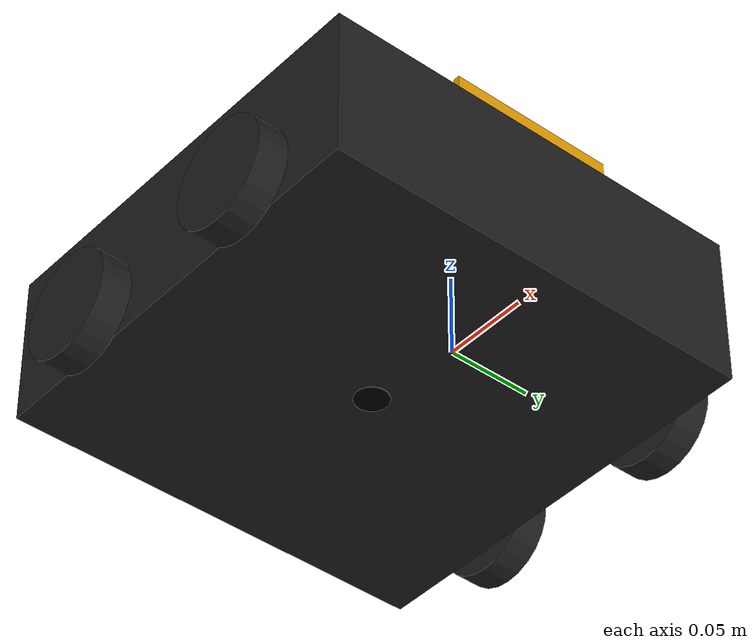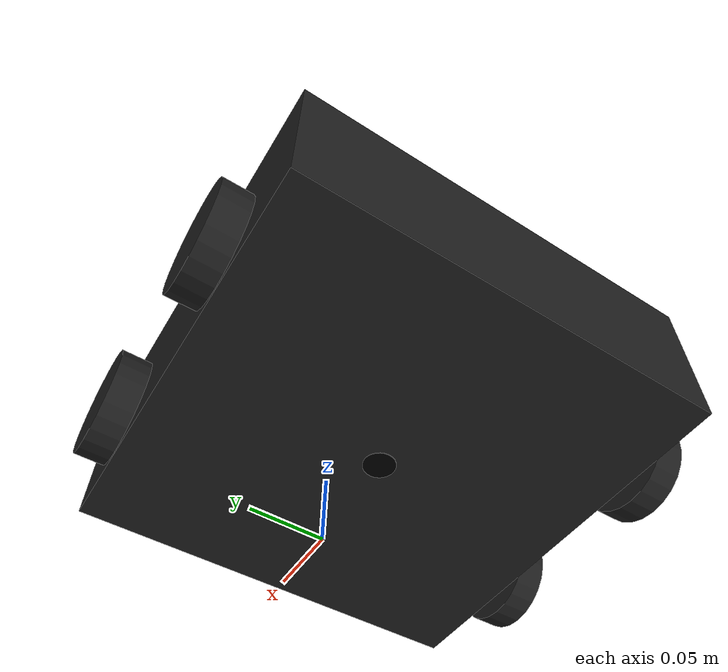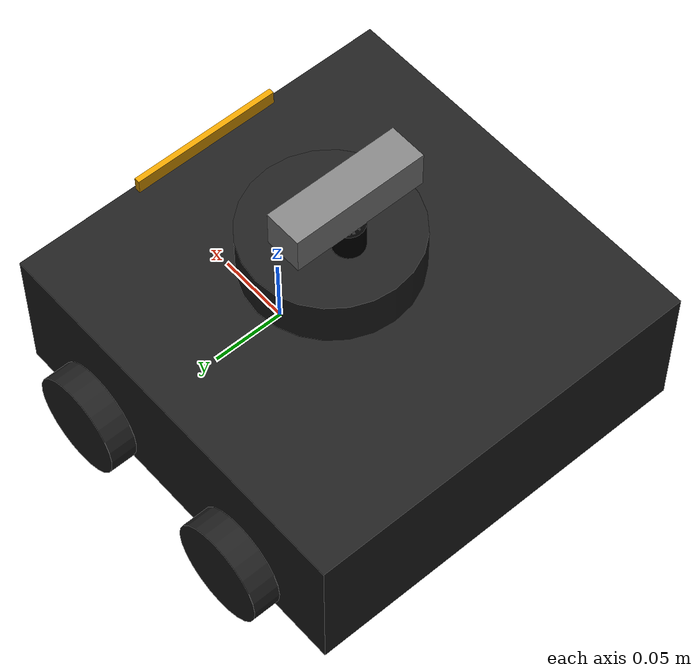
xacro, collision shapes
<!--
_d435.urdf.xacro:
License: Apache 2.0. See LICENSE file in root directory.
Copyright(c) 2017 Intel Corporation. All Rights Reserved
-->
<?xml version="1.0" ?>
<robot name="turtlebot3_waffle" xmlns:xacro="http://ros.org/wiki/xacro">
  <xacro:include filename="$(find turtlebot3_description)/urdf/common_properties.xacro"/>
  <xacro:include filename="$(find aslam_bringup)/launch/turtlebot3_simulation/urdf/turtlebot3_waffle_d435.gazebo.xacro"/>

  <xacro:property name="r200_cam_rgb_px" value="0.005"/>
  <xacro:property name="r200_cam_rgb_py" value="0.018"/>
  <xacro:property name="r200_cam_rgb_pz" value="0.013"/>
  <xacro:property name="r200_cam_depth_offset" value="0.01"/>

  <xacro:property name="telescopic_extension_length" value="0.15"/>

  <link name="base_footprint"/>

  <joint name="base_joint" type="fixed">
    <parent link="base_footprint"/>
    <child link="base_link" />
    <origin xyz="0 0 0.010" rpy="0 0 0"/>
  </joint>

  <link name="base_link">
    <visual>
      <origin xyz="-0.064 0 0.0" rpy="0 0 0"/>
      <geometry>
        <mesh filename="package://turtlebot3_description/meshes/bases/waffle_base.stl" scale="0.001 0.001 0.001"/>
      </geometry>
      <material name="light_black"/>
    </visual>

    <collision>
      <origin xyz="-0.064 0 0.047" rpy="0 0 0"/>
      <geometry>
        <box size="0.266 0.266 0.094"/>
      </geometry>
    </collision>

    <inertial>
      <origin xyz="-0.064 0 0.047" rpy="0 0 0"/>
      <mass value="1.3729096e+00"/>
      <inertia ixx="8.7002718e-03" ixy="-4.7576583e-05" ixz="1.1160499e-04"
               iyy="8.6195418e-03" iyz="-3.5422299e-06"
               izz="1.4612727e-02" />
    </inertial>
  </link>

  <joint name="wheel_left_joint" type="continuous">
    <parent link="base_link"/>
    <child link="wheel_left_link"/>
    <origin xyz="0.0 0.144 0.023" rpy="-1.57 0 0"/>
    <axis xyz="0 0 1"/>
  </joint>

  <link name="wheel_left_link">
    <visual>
      <origin xyz="0 0 0" rpy="1.57 0 0"/>
      <geometry>
        <mesh filename="package://turtlebot3_description/meshes/wheels/left_tire.stl" scale="0.001 0.001 0.001"/>
      </geometry>
      <material name="dark"/>
    </visual>

    <collision>
      <origin xyz="0 0 0" rpy="0 0 0"/>
      <geometry>
        <cylinder length="0.018" radius="0.033"/>
      </geometry>
    </collision>

    <inertial>
      <origin xyz="0 0 0" />
      <mass value="2.8498940e-02" />
      <inertia ixx="1.1175580e-05" ixy="-4.2369783e-11" ixz="-5.9381719e-09"
               iyy="1.1192413e-05" iyz="-1.4400107e-11"
               izz="2.0712558e-05" />
    </inertial>
  </link>

  <joint name="wheel_right_joint" type="continuous">
    <parent link="base_link"/>
    <child link="wheel_right_link"/>
    <origin xyz="0.0 -0.144 0.023" rpy="-1.57 0 0"/>
    <axis xyz="0 0 1"/>
  </joint>

  <link name="wheel_right_link">
    <visual>
      <origin xyz="0 0 0" rpy="1.57 0 0"/>
      <geometry>
        <mesh filename="package://turtlebot3_description/meshes/wheels/right_tire.stl" scale="0.001 0.001 0.001"/>
      </geometry>
      <material name="dark"/>
    </visual>

    <collision>
      <origin xyz="0 0 0" rpy="0 0 0"/>
      <geometry>
        <cylinder length="0.018" radius="0.033"/>
      </geometry>
    </collision>

    <inertial>
      <origin xyz="0 0 0" />
      <mass value="2.8498940e-02" />
      <inertia ixx="1.1175580e-05" ixy="-4.2369783e-11" ixz="-5.9381719e-09"
               iyy="1.1192413e-05" iyz="-1.4400107e-11"
               izz="2.0712558e-05" />
    </inertial>
  </link>

  <joint name="caster_back_right_joint" type="fixed">
    <parent link="base_link"/>
    <child link="caster_back_right_link"/>
    <origin xyz="-0.128 -0.144 0.023" rpy="-1.57 0 0"/>
  </joint>

  <link name="caster_back_right_link">
    <visual>
      <origin xyz="0 0 0" rpy="1.57 0 0"/>
      <geometry>
        <mesh filename="package://turtlebot3_description/meshes/wheels/right_tire.stl" scale="0.001 0.001 0.001"/>
      </geometry>
      <material name="dark"/>
    </visual>

    <collision>
      <origin xyz="0 0 0" rpy="0 0 0"/>
      <geometry>
        <cylinder length="0.018" radius="0.033"/>
      </geometry>
    </collision>

    <inertial>
      <origin xyz="0 0 0" rpy="0 0 0"/>
      <mass value="0.029" />
      <inertia ixx="0.000008678" ixy="0.0" ixz="0.0"
               iyy="0.000008678" iyz="0.0"
               izz="0.00001579" />
    </inertial>
  </link>

  <joint name="caster_back_left_joint" type="fixed">
    <parent link="base_link"/>
    <child link="caster_back_left_link"/>
    <origin xyz="-0.128 0.144 0.023" rpy="-1.57 0 0"/>
  </joint>

  <link name="caster_back_left_link">
    <visual>
      <origin xyz="0 0 0" rpy="1.57 0 0"/>
      <geometry>
        <mesh filename="package://turtlebot3_description/meshes/wheels/left_tire.stl" scale="0.001 0.001 0.001"/>
      </geometry>
      <material name="dark"/>
    </visual>

    <collision>
      <origin xyz="0 0 0" rpy="0 0 0"/>
      <geometry>
        <cylinder length="0.018" radius="0.033"/>
      </geometry>
    </collision>

    <inertial>
      <origin xyz="0 0 0" rpy="0 0 0"/>
      <mass value="0.029" />
      <inertia ixx="0.000008678" ixy="0.0" ixz="0.0"
               iyy="0.000008678" iyz="0.0"
               izz="0.00001579" />
    </inertial>
  </link>

  <joint name="imu_joint" type="fixed">
    <parent link="base_link"/>
    <child link="imu_link"/>
    <origin xyz="0.0 0 0.068" rpy="0 0 0"/>
  </joint>

  <link name="imu_link"/>

  <joint name="scan_joint" type="fixed">
    <parent link="base_link"/>
    <child link="base_scan"/>
    <origin xyz="-0.064 0 0.122" rpy="0 0 0"/>
  </joint>

  <link name="base_scan">
    <visual>
      <origin xyz="0 0 0" rpy="0 0 0"/>
      <geometry>
        <mesh filename="package://turtlebot3_description/meshes/sensors/lds.stl" scale="0.001 0.001 0.001"/>
      </geometry>
      <material name="dark"/>
    </visual>

    <collision>
      <origin xyz="0.015 0 -0.0065" rpy="0 0 0"/>
      <geometry>
        <cylinder length="0.0315" radius="0.055"/>
      </geometry>
    </collision>

    <inertial>
      <mass value="0.114" />
      <origin xyz="0 0 0" />
      <inertia ixx="0.001" ixy="0.0" ixz="0.0"
               iyy="0.001" iyz="0.0"
               izz="0.001" />
    </inertial>
  </link>

  <joint name="front_camera_joint" type="fixed">
    <origin xyz="0.064 -0.065 0.094" rpy="0 0 0"/>
    <parent link="base_link"/>
    <child link="front_camera_link"/>
  </joint>

  <link name="front_camera_link">
    <visual>
      <origin xyz="0 0 0" rpy="1.57 0 1.57"/>
      <geometry>
       <mesh filename="package://turtlebot3_description/meshes/sensors/r200.dae" />
      </geometry>
    </visual>

    <collision>
      <origin xyz="0.0 0.065 0.007" rpy="0 0 0"/>
      <geometry>
        <box size="0.0038 0.1016 0.0096"/>
      </geometry>
    </collision>

    <!-- This inertial field needs doesn't contain reliable data!! -->
   <inertial>
      <mass value="0.05" />
      <origin xyz="0.0 0.065 0.007" rpy="0 0 0"/>
      <inertia ixx="0.000043395"  ixy="0.0" ixz="0.0"
               iyy="0.0000004442" iyz="0.0"
               izz="0.00004307" />
    </inertial>
  </link>

  <joint name="front_camera_rgb_joint" type="fixed">
    <origin xyz="${r200_cam_rgb_px} ${r200_cam_rgb_py} ${r200_cam_rgb_pz}" rpy="0 0 0"/>
    <parent link="front_camera_link"/>
    <child link="front_camera_rgb_frame"/>
  </joint>
  <link name="front_camera_rgb_frame"/>

  <joint name="front_camera_rgb_optical_joint" type="fixed">
    <origin xyz="0 0 0" rpy="-1.57 0 -1.57"/>
    <parent link="front_camera_rgb_frame"/>
    <child link="front_camera_rgb_optical_frame"/>
  </joint>
  <link name="front_camera_rgb_optical_frame"/>

  <joint name="front_camera_depth_joint" type="fixed">
    <origin xyz="${r200_cam_rgb_px} ${r200_cam_rgb_py + r200_cam_depth_offset} ${r200_cam_rgb_pz}" rpy="0 0 0"/>
    <parent link="front_camera_link"/>
    <child link="front_camera_depth_frame"/>
  </joint>
  <link name="front_camera_depth_frame"/>

  <joint name="front_camera_depth_optical_joint" type="fixed">
    <origin xyz="0 0 0" rpy="-1.57 0 -1.57"/>
    <parent link="front_camera_depth_frame"/>
    <child link="front_camera_depth_optical_frame"/>
  </joint>
  <link name="front_camera_depth_optical_frame"/>

<!-- Added by Iker -->
  <!-- Pan movement -->
  <joint name="telescopic_arm_base_joint" type="fixed">
    <parent link="base_link"/>
    <child link="telescopic_arm_base_link"/>
    <origin rpy="0 -1.57 0" xyz="-0.064 0 0"/>
  </joint>

  <link name="telescopic_arm_base_link">
    <visual>
      <geometry>
        <cylinder length="0.001" radius=".01"/>
      </geometry>
      <origin rpy="0 1.57 0 " xyz="0 0 0"/>
      <material name="Gray">
        <color rgba="0 0 0 1"/>
      </material>
    </visual>

    <collision>
      <geometry>
        <cylinder length="0.001" radius=".01"/>
      </geometry>
      <origin rpy="0 1.57 0 " xyz="0 0 0"/>
    </collision>

    <inertial>
      <mass value="0.1" />
      <origin xyz="0 0 0" />
      <inertia ixx="0.0000025083" ixy="0.0" ixz="0.0"
               iyy="0.0000025083" iyz="0.0"
               izz="0.000005" />
    </inertial>
  </link>

  <joint name="telescopic_arm_continuous_joint" type="continuous">
    <parent link="telescopic_arm_base_link"/>
    <child link="telescopic_arm_extension_base_link"/>
    <origin rpy="0 0 0" xyz="0.0005 0 0"/>
    <limit effort="0.1" velocity="0.1"/>
  </joint>

  <link name="telescopic_arm_extension_base_link">
    <visual>
      <geometry>
        <mesh filename="package://aslam_bringup/launch/turtlebot3_simulation/meshes/cylinder_150_10_2.stl"/>
      </geometry>
      <origin rpy="0 1.57 0 " xyz="${telescopic_extension_length/2} 0 0"/>
      <material name="Gray">
        <color rgba="0 0 0 1"/>
      </material>
    </visual>

    <collision>
      <geometry>
        <cylinder length="${telescopic_extension_length}" radius=".01"/>
      </geometry>
      <origin rpy="0 1.57 0 " xyz="${telescopic_extension_length/2} 0 0"/>
    </collision>

    <inertial>
      <mass value="0.1" />
      <origin rpy="0 1.57 0 " xyz="${telescopic_extension_length/2} 0 0"/>
      <inertia ixx="0.00019" ixy="0.0" ixz="0.0"
               iyy="0.00019" iyz="0.0"
               izz="0.000005" />
    </inertial>
  </link>

  <!-- Telescopic arm -->
  <joint name="telescopic_arm_extension_1_joint" type="prismatic">
    <parent link="telescopic_arm_extension_base_link"/>
    <child link="telescopic_arm_extension_1_link"/>
    <limit effort="30" lower="0" upper="0.15" velocity="0.05"/>
    <origin rpy="0 0 0" xyz="0 0 0"/>
  </joint>

  <link name="telescopic_arm_extension_1_link">
    <visual>
      <geometry>
        <mesh filename="package://aslam_bringup/launch/turtlebot3_simulation/meshes/cylinder_150_08_2.stl"/>
      </geometry>
      <origin rpy="0 1.57 0 " xyz="${telescopic_extension_length/2} 0 0"/>
      <material name="Gray">
        <color rgba=".2 .2 .2 1"/>
      </material>
    </visual>

    <collision>
      <geometry>
        <cylinder length="${telescopic_extension_length}" radius=".008"/>
      </geometry>
      <origin rpy="0 1.57 0 " xyz="${telescopic_extension_length/2} 0 0"/>
    </collision>

    <inertial>
      <mass value="0.08" />
      <origin rpy="0 1.57 0 " xyz="${telescopic_extension_length/2} 0 0"/>
      <inertia ixx="0.00015128" ixy="0.0" ixz="0.0"
               iyy="0.00015128" iyz="0.0"
               izz="0.00000256" />
    </inertial>
  </link>

  <joint name="telescopic_arm_extension_2_joint" type="prismatic">
    <parent link="telescopic_arm_extension_1_link"/>
    <child link="telescopic_arm_extension_2_link"/>
    <limit effort="30" lower="0" upper="0.15" velocity="0.05"/>
    <origin rpy="0 0 0" xyz="0 0 0"/>
    <mimic joint="telescopic_arm_extension_1_joint"/>
  </joint>

  <link name="telescopic_arm_extension_2_link">
    <visual>
      <geometry>
        <mesh filename="package://aslam_bringup/launch/turtlebot3_simulation/meshes/cylinder_150_06_2.stl"/>
      </geometry>
      <origin rpy="0 1.57 0 " xyz="${telescopic_extension_length/2} 0 0"/>
      <material name="Gray">
        <color rgba=".4 .4 .4 1"/>
      </material>
    </visual>

    <collision>
      <geometry>
        <cylinder length="${telescopic_extension_length}" radius=".006"/>
      </geometry>
      <origin rpy="0 1.57 0 " xyz="${telescopic_extension_length/2} 0 0"/>
    </collision>

    <inertial>
      <mass value="0.06" />
      <origin rpy="0 1.57 0 " xyz="${telescopic_extension_length/2} 0 0"/>
      <inertia ixx="0.00011304" ixy="0.0" ixz="0.0"
               iyy="0.00011304" iyz="0.0"
               izz="0.00000108" />
    </inertial>
  </link>

  <joint name="telescopic_arm_extension_3_joint" type="prismatic">
    <parent link="telescopic_arm_extension_2_link"/>
    <child link="telescopic_arm_extension_3_link"/>
    <limit effort="30" lower="0" upper="0.15" velocity="0.05"/>
    <origin rpy="0 0 0" xyz="0 0 0"/>
    <mimic joint="telescopic_arm_extension_2_joint"/>
  </joint>

  <link name="telescopic_arm_extension_3_link">
    <visual>
      <geometry>
        <cylinder length="${telescopic_extension_length}" radius=".004"/>
      </geometry>
      <origin rpy="0 1.57 0 " xyz="${telescopic_extension_length/2} 0 0"/>
      <material name="Gray">
        <color rgba=".6 .6 .6 1"/>
      </material>
    </visual>

    <collision>
      <geometry>
        <cylinder length="${telescopic_extension_length}" radius=".004"/>
      </geometry>
      <origin rpy="0 1.57 0 " xyz="${telescopic_extension_length/2} 0 0"/>
    </collision>

    <inertial>
      <mass value="0.04" />
      <origin rpy="0 1.57 0 " xyz="${telescopic_extension_length/2} 0 0"/>
      <inertia ixx="0.00007516" ixy="0.0" ixz="0.0"
               iyy="0.00007516" iyz="0.0"
               izz="0.00000032" />
    </inertial>
  </link>

  <!-- Tilt camera -->
  <joint name="top_camera_tilt_joint" type="revolute">
    <parent link="telescopic_arm_extension_3_link"/>
    <child link="top_camera_tilt_link"/>
    <origin xyz="${telescopic_extension_length+0.004} 0 0" rpy="0 1.57 0"/>
    <axis xyz="0 1 0"/>
    <limit effort="0.1" lower="-0.79" upper="0.79" velocity="0.5"/>
  </joint>

  <link name="top_camera_tilt_link">
    <visual>
      <geometry>
        <cylinder length="0.04" radius=".004"/>
      </geometry>
      <origin rpy="-1.57 0 0 " xyz="0 0 0"/>
      <material name="Gray">
        <color rgba=".8 .8 .9 1"/>
      </material>
    </visual>

    <collision>
      <geometry>
        <cylinder length="0.04" radius=".004"/>
      </geometry>
      <origin rpy="-1.57 0 0 " xyz="0 0 0"/>
    </collision>

    <inertial>
      <mass value="0.05" />
      <origin rpy="-1.57 0 0 " xyz="0 0 0"/>
      <inertia ixx="0.000006867" ixy="0.0" ixz="0.0"
               iyy="0.000006867" iyz="0.0"
               izz="0.0000004" />
    </inertial>
  </link>

  <xacro:include filename="$(find aslam_bringup)/launch/turtlebot3_simulation/urdf/_d435.urdf.xacro"/>
  <sensor_d435 parent="top_camera_tilt_link">
    <origin rpy="0 0 0" xyz="0 0 0.004"/>
  </sensor_d435>

</robot>

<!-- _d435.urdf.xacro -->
<robot name="sensor_d435" xmlns:xacro="http://ros.org/wiki/xacro">
  <!--File includes-->
  <xacro:include filename="$(find aslam_bringup)/launch/turtlebot3_simulation/urdf/_d435.gazebo.xacro"/>

  <xacro:macro name="sensor_d435" params="name:=top_camera topics_ns:=top_camera parent *origin">
    <xacro:property name="M_PI" value="3.1415926535897931" />

    <!-- The following values are approximate, and the camera node
     publishing TF values with actual calibrated camera extrinsic values -->
    <xacro:property name="d435_cam_depth_to_left_ir_offset" value="0.0"/>
    <xacro:property name="d435_cam_depth_to_right_ir_offset" value="-0.050"/>
    <xacro:property name="d435_cam_depth_to_color_offset" value="0.015"/>

    <!-- The following values model the aluminum peripherial case for the
  	D435 camera, with the camera joint represented by the actual
  	peripherial camera tripod mount -->
    <xacro:property name="d435_cam_width" value="0.090"/>
    <xacro:property name="d435_cam_height" value="0.025"/>
    <xacro:property name="d435_cam_depth" value="0.02505"/>
    <xacro:property name="d435_cam_mount_from_center_offset" value="0.0149"/>

    <!-- The following offset is relative the the physical D435 camera peripherial
  	camera tripod mount -->
    <xacro:property name="d435_cam_depth_px" value="${d435_cam_mount_from_center_offset}"/>
    <xacro:property name="d435_cam_depth_py" value="0.0175"/>
    <xacro:property name="d435_cam_depth_pz" value="${d435_cam_height/2}"/>

    <material name="${name}_aluminum">
	  <color rgba="0.5 0.5 0.5 1"/>
    </material>

    <!-- camera body, with origin at bottom screw mount -->
    <joint name="${name}_joint" type="fixed">
      <xacro:insert_block name="origin" />
      <parent link="${parent}"/>
      <child link="${name}_bottom_screw_frame" />
    </joint>
    <link name="${name}_bottom_screw_frame"/>

    <joint name="${name}_link_joint" type="fixed">
      <origin xyz="0 ${d435_cam_depth_py} ${d435_cam_depth_pz}" rpy="0 0 0"/>
      <parent link="${name}_bottom_screw_frame"/>
      <child link="${name}_link" />
    </joint>

    <link name="${name}_link">
      <visual>
        <origin xyz="${d435_cam_mount_from_center_offset} ${-d435_cam_depth_py} 0" rpy="${M_PI/2} 0 ${M_PI/2}"/>
        <geometry>
          <mesh filename="package://aslam_bringup/launch/turtlebot3_simulation/meshes/d435.dae" />
        </geometry>
        <material name="${name}_aluminum"/>
      </visual>
      <collision>
        <origin xyz="0.002 ${-d435_cam_depth_py} 0.0" rpy="${M_PI/2} 0 ${M_PI/2}"/>
        <geometry>
          <box size="${d435_cam_width} ${d435_cam_height} ${d435_cam_depth}"/>
        </geometry>
      </collision>
      <inertial>
        <!-- The following are not reliable values, and should not be used for modeling -->
        <mass value="0.072" />
        <origin xyz="0.002 ${-d435_cam_depth_py} 0.0" rpy="${M_PI/2} 0 ${M_PI/2}"/>
        <inertia ixx="0.000007515" ixy="0.0" ixz="0.0"
                 iyy="0.00005237"  iyz="0.0"
                 izz="0.00005235" />
      </inertial>

    </link>

    <!-- camera depth joints and links -->
    <joint name="${name}_depth_joint" type="fixed">
      <origin xyz="0 0 0" rpy="0 0 0"/>
      <parent link="${name}_link"/>
      <child link="${name}_depth_frame" />
    </joint>
    <link name="${name}_depth_frame"/>

    <joint name="${name}_depth_optical_joint" type="fixed">
      <origin xyz="0 0 0" rpy="${-M_PI/2} 0 ${-M_PI/2}" />
      <parent link="${name}_depth_frame" />
      <child link="${name}_depth_optical_frame" />
    </joint>
    <link name="${name}_depth_optical_frame"/>

    <!-- camera left IR joints and links -->
    <joint name="${name}_left_ir_joint" type="fixed">
      <origin xyz="0 ${d435_cam_depth_to_left_ir_offset} 0" rpy="0 0 0" />
      <parent link="${name}_depth_frame" />
      <child link="${name}_left_ir_frame" />
    </joint>
    <link name="${name}_left_ir_frame"/>

    <joint name="${name}_left_ir_optical_joint" type="fixed">
      <origin xyz="0 0 0" rpy="${-M_PI/2} 0 ${-M_PI/2}" />
      <parent link="${name}_left_ir_frame" />
      <child link="${name}_left_ir_optical_frame" />
    </joint>
    <link name="${name}_left_ir_optical_frame"/>

    <!-- camera right IR joints and links -->
    <joint name="${name}_right_ir_joint" type="fixed">
      <origin xyz="0 ${d435_cam_depth_to_right_ir_offset} 0" rpy="0 0 0" />
      <parent link="${name}_depth_frame" />
      <child link="${name}_right_ir_frame" />
    </joint>
    <link name="${name}_right_ir_frame"/>

    <joint name="${name}_right_ir_optical_joint" type="fixed">
      <origin xyz="0 0 0" rpy="${-M_PI/2} 0 ${-M_PI/2}" />
      <parent link="${name}_right_ir_frame" />
      <child link="${name}_right_ir_optical_frame" />
    </joint>
    <link name="${name}_right_ir_optical_frame"/>

    <!-- camera color joints and links -->
    <joint name="${name}_color_joint" type="fixed">
      <origin xyz="0 ${d435_cam_depth_to_color_offset} 0" rpy="0 0 0" />
      <parent link="${name}_depth_frame" />
      <child link="${name}_color_frame" />
    </joint>
    <link name="${name}_color_frame"/>

    <joint name="${name}_color_optical_joint" type="fixed">
      <origin xyz="0 0 0" rpy="${-M_PI/2} 0 ${-M_PI/2}" />
      <parent link="${name}_color_frame" />
      <child link="${name}_color_optical_frame" />
    </joint>
    <link name="${name}_color_optical_frame"/>

    <!-- Realsense Gazebo Plugin -->
    <xacro:gazebo_d435 camera_name="${name}" reference_link="${name}_link" topics_ns="${topics_ns}" depth_optical_frame="${name}_depth_optical_frame" color_optical_frame="${name}_color_optical_frame" infrared1_optical_frame="${name}_left_ir_optical_frame" infrared2_optical_frame="${name}_right_ir_optical_frame"/>

  </xacro:macro>
</robot>
